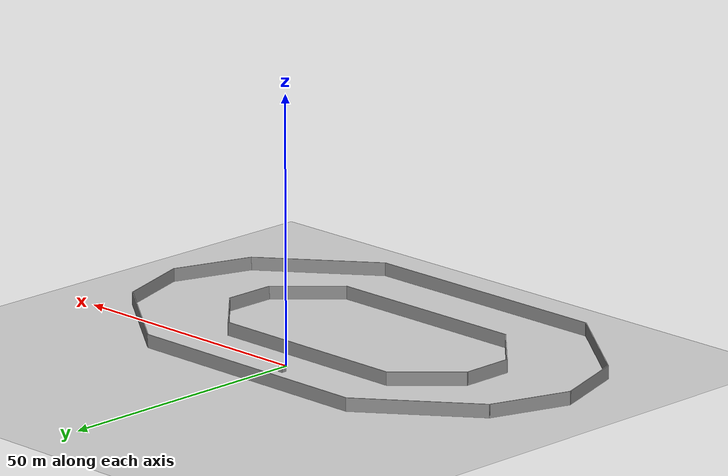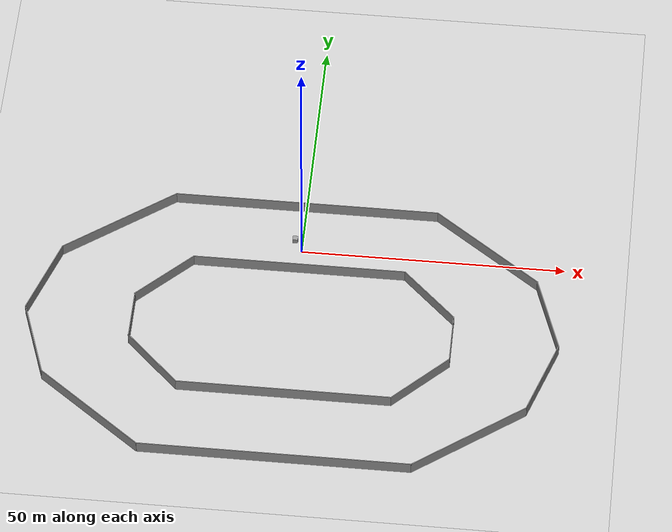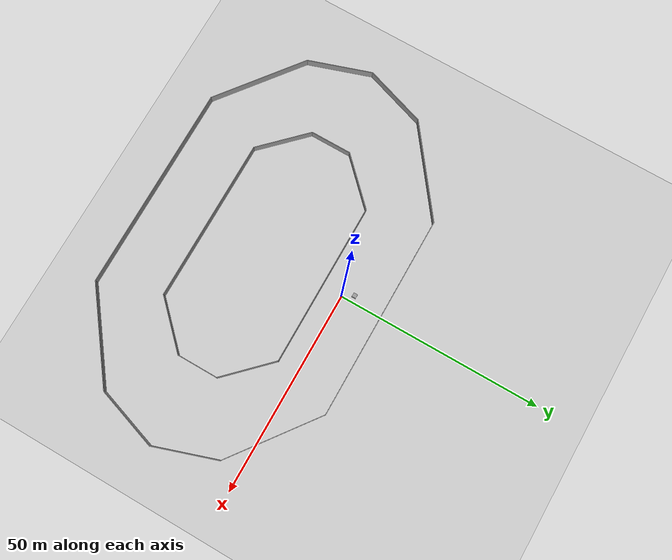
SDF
<?xml version="1.0" ?>
<sdf version="1.5">
  <world name="default">
    <!-- A global light source -->
    <include>
      <uri>model://sun</uri>
    </include>
    <!-- A ground plane -->
    <include>
      <uri>model://ground_plane</uri>
    </include>
    <!-- A unit box -->
    <model name='unit_box_0_0'>
      <pose frame=''>-1.5 2.5 0.5 0 -0 0</pose>
      <link name='link'>
        <inertial>
          <mass>1</mass>
          <inertia>
            <ixx>0.166667</ixx>
            <ixy>0</ixy>
            <ixz>0</ixz>
            <iyy>0.166667</iyy>
            <iyz>0</iyz>
            <izz>0.166667</izz>
          </inertia>
        </inertial>
        <collision name='collision'>
          <geometry>
            <box>
              <size>1 1 1</size>
            </box>
          </geometry>
          <max_contacts>10</max_contacts>
          <surface>
            <contact>
              <ode/>
            </contact>
            <bounce/>
            <friction>
              <torsional>
                <ode/>
              </torsional>
              <ode/>
            </friction>
          </surface>
        </collision>
        <visual name='visual'>
          <geometry>
            <box>
              <size>1 1 1</size>
            </box>
          </geometry>
          <material>
            <script>
              <name>Gazebo/Grey</name>
              <uri>file://media/materials/scripts/gazebo.material</uri>
            </script>
          </material>
        </visual>
        <self_collide>0</self_collide>
        <kinematic>0</kinematic>
        <gravity>1</gravity>
      </link>

    </model>
    <include>
      <uri>model://Circuit_TIM</uri>
    </include>
  </world>
</sdf>

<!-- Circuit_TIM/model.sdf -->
<sdf version='1.6'>
  <model name='Circuit_TIM'>
    <pose frame=''>0 -20.0001 0 0 -0 0</pose>
    <link name='Wall_16'>
      <collision name='Wall_16_Collision'>
        <geometry>
          <box>
            <size>50.5794 0.15 2.5</size>
          </box>
        </geometry>
        <pose frame=''>0 0 1.25 0 -0 0</pose>
      </collision>
      <visual name='Wall_16_Visual'>
        <pose frame=''>0 0 1.25 0 -0 0</pose>
        <geometry>
          <box>
            <size>50.5794 0.15 2.5</size>
          </box>
        </geometry>
        <material>
          <script>
            <uri>file://media/materials/scripts/gazebo.material</uri>
            <name>Gazebo/Grey</name>
          </script>
          <ambient>1 1 1 1</ambient>
        </material>
        <meta>
          <layer>0</layer>
        </meta>
      </visual>
      <pose frame=''>-0.214689 -29.9999 0 0 -0 0</pose>
    </link>
    <link name='Wall_18'>
      <collision name='Wall_18_Collision'>
        <geometry>
          <box>
            <size>25.15 0.15 2.5</size>
          </box>
        </geometry>
        <pose frame=''>0 0 1.25 0 -0 0</pose>
      </collision>
      <visual name='Wall_18_Visual'>
        <pose frame=''>0 0 1.25 0 -0 0</pose>
        <geometry>
          <box>
            <size>25.15 0.15 2.5</size>
          </box>
        </geometry>
        <material>
          <script>
            <uri>file://media/materials/scripts/gazebo.material</uri>
            <name>Gazebo/Grey</name>
          </script>
          <ambient>1 1 1 1</ambient>
        </material>
        <meta>
          <layer>0</layer>
        </meta>
      </visual>
      <pose frame=''>35 -22.4999 0 0 -0 0.643501</pose>
    </link>
    <link name='Wall_19'>
      <collision name='Wall_19_Collision'>
        <geometry>
          <box>
            <size>15.9614 0.15 2.5</size>
          </box>
        </geometry>
        <pose frame=''>0 0 1.25 0 -0 0</pose>
      </collision>
      <visual name='Wall_19_Visual'>
        <pose frame=''>0 0 1.25 0 -0 0</pose>
        <geometry>
          <box>
            <size>15.9614 0.15 2.5</size>
          </box>
        </geometry>
        <material>
          <script>
            <uri>file://media/materials/scripts/gazebo.material</uri>
            <name>Gazebo/Grey</name>
          </script>
          <ambient>1 1 1 1</ambient>
        </material>
        <meta>
          <layer>0</layer>
        </meta>
      </visual>
      <pose frame=''>47.5 -7.4999 0 0 -0 1.24905</pose>
    </link>
    <link name='Wall_20'>
      <collision name='Wall_20_Collision'>
        <geometry>
          <box>
            <size>15.9614 0.15 2.5</size>
          </box>
        </geometry>
        <pose frame=''>0 0 1.25 0 -0 0</pose>
      </collision>
      <visual name='Wall_20_Visual'>
        <pose frame=''>0 0 1.25 0 -0 0</pose>
        <geometry>
          <box>
            <size>15.9614 0.15 2.5</size>
          </box>
        </geometry>
        <material>
          <script>
            <uri>file://media/materials/scripts/gazebo.material</uri>
            <name>Gazebo/Grey</name>
          </script>
          <ambient>1 1 1 1</ambient>
        </material>
        <meta>
          <layer>0</layer>
        </meta>
      </visual>
      <pose frame=''>47.5 7.5001 0 0 -0 1.89255</pose>
    </link>
    <link name='Wall_23'>
      <collision name='Wall_23_Collision'>
        <geometry>
          <box>
            <size>25.15 0.15 2.5</size>
          </box>
        </geometry>
        <pose frame=''>0 0 1.25 0 -0 0</pose>
      </collision>
      <visual name='Wall_23_Visual'>
        <pose frame=''>0 0 1.25 0 -0 0</pose>
        <geometry>
          <box>
            <size>25.15 0.15 2.5</size>
          </box>
        </geometry>
        <material>
          <script>
            <uri>file://media/materials/scripts/gazebo.material</uri>
            <name>Gazebo/Grey</name>
          </script>
          <ambient>1 1 1 1</ambient>
        </material>
        <meta>
          <layer>0</layer>
        </meta>
      </visual>
      <pose frame=''>35 22.5001 0 0 -0 2.49809</pose>
    </link>
    <link name='Wall_24'>
      <collision name='Wall_24_Collision'>
        <geometry>
          <box>
            <size>50.15 0.15 2.5</size>
          </box>
        </geometry>
        <pose frame=''>0 0 1.25 0 -0 0</pose>
      </collision>
      <visual name='Wall_24_Visual'>
        <pose frame=''>0 0 1.25 0 -0 0</pose>
        <geometry>
          <box>
            <size>50.15 0.15 2.5</size>
          </box>
        </geometry>
        <material>
          <script>
            <uri>file://media/materials/scripts/gazebo.material</uri>
            <name>Gazebo/Grey</name>
          </script>
          <ambient>1 1 1 1</ambient>
        </material>
        <meta>
          <layer>0</layer>
        </meta>
      </visual>
      <pose frame=''>0 30.0001 0 0 -0 3.14159</pose>
    </link>
    <link name='Wall_25'>
      <collision name='Wall_25_Collision'>
        <geometry>
          <box>
            <size>25.15 0.15 2.5</size>
          </box>
        </geometry>
        <pose frame=''>0 0 1.25 0 -0 0</pose>
      </collision>
      <visual name='Wall_25_Visual'>
        <pose frame=''>0 0 1.25 0 -0 0</pose>
        <geometry>
          <box>
            <size>25.15 0.15 2.5</size>
          </box>
        </geometry>
        <material>
          <script>
            <uri>file://media/materials/scripts/gazebo.material</uri>
            <name>Gazebo/Grey</name>
          </script>
          <ambient>1 1 1 1</ambient>
        </material>
        <meta>
          <layer>0</layer>
        </meta>
      </visual>
      <pose frame=''>-35 22.5001 0 0 -0 -2.49809</pose>
    </link>
    <link name='Wall_26'>
      <collision name='Wall_26_Collision'>
        <geometry>
          <box>
            <size>15.9614 0.15 2.5</size>
          </box>
        </geometry>
        <pose frame=''>0 0 1.25 0 -0 0</pose>
      </collision>
      <visual name='Wall_26_Visual'>
        <pose frame=''>0 0 1.25 0 -0 0</pose>
        <geometry>
          <box>
            <size>15.9614 0.15 2.5</size>
          </box>
        </geometry>
        <material>
          <script>
            <uri>file://media/materials/scripts/gazebo.material</uri>
            <name>Gazebo/Grey</name>
          </script>
          <ambient>1 1 1 1</ambient>
        </material>
        <meta>
          <layer>0</layer>
        </meta>
      </visual>
      <pose frame=''>-47.5 7.5001 0 0 -0 -1.89255</pose>
    </link>
    <link name='Wall_27'>
      <collision name='Wall_27_Collision'>
        <geometry>
          <box>
            <size>15.9614 0.15 2.5</size>
          </box>
        </geometry>
        <pose frame=''>0 0 1.25 0 -0 0</pose>
      </collision>
      <visual name='Wall_27_Visual'>
        <pose frame=''>0 0 1.25 0 -0 0</pose>
        <geometry>
          <box>
            <size>15.9614 0.15 2.5</size>
          </box>
        </geometry>
        <material>
          <script>
            <uri>file://media/materials/scripts/gazebo.material</uri>
            <name>Gazebo/Grey</name>
          </script>
          <ambient>1 1 1 1</ambient>
        </material>
        <meta>
          <layer>0</layer>
        </meta>
      </visual>
      <pose frame=''>-47.5 -7.4999 0 0 -0 -1.24905</pose>
    </link>
    <link name='Wall_28'>
      <collision name='Wall_28_Collision'>
        <geometry>
          <box>
            <size>24.6944 0.15 2.5</size>
          </box>
        </geometry>
        <pose frame=''>0 0 1.25 0 -0 0</pose>
      </collision>
      <visual name='Wall_28_Visual'>
        <pose frame=''>0 0 1.25 0 -0 0</pose>
        <geometry>
          <box>
            <size>24.6944 0.15 2.5</size>
          </box>
        </geometry>
        <material>
          <script>
            <uri>file://media/materials/scripts/gazebo.material</uri>
            <name>Gazebo/Grey</name>
          </script>
          <ambient>1 1 1 1</ambient>
        </material>
        <meta>
          <layer>0</layer>
        </meta>
      </visual>
      <pose frame=''>-35.2863 -22.4999 0 0 -0 -0.657497</pose>
    </link>
    <link name='Wall_50'>
      <collision name='Wall_50_Collision'>
        <geometry>
          <box>
            <size>40.15 0.15 2.5</size>
          </box>
        </geometry>
        <pose frame=''>0 0 1.25 0 -0 0</pose>
      </collision>
      <visual name='Wall_50_Visual'>
        <pose frame=''>0 0 1.25 0 -0 0</pose>
        <geometry>
          <box>
            <size>40.15 0.15 2.5</size>
          </box>
        </geometry>
        <material>
          <script>
            <uri>file://media/materials/scripts/gazebo.material</uri>
            <name>Gazebo/Grey</name>
          </script>
          <ambient>1 1 1 1</ambient>
        </material>
        <meta>
          <layer>0</layer>
        </meta>
      </visual>
      <pose frame=''>0 15.0001 0 0 -0 0</pose>
    </link>
    <link name='Wall_51'>
      <collision name='Wall_51_Collision'>
        <geometry>
          <box>
            <size>14.2921 0.15 2.5</size>
          </box>
        </geometry>
        <pose frame=''>0 0 1.25 0 -0 0</pose>
      </collision>
      <visual name='Wall_51_Visual'>
        <pose frame=''>0 0 1.25 0 -0 0</pose>
        <geometry>
          <box>
            <size>14.2921 0.15 2.5</size>
          </box>
        </geometry>
        <material>
          <script>
            <uri>file://media/materials/scripts/gazebo.material</uri>
            <name>Gazebo/Grey</name>
          </script>
          <ambient>1 1 1 1</ambient>
        </material>
        <meta>
          <layer>0</layer>
        </meta>
      </visual>
      <pose frame=''>25 10.0001 0 0 -0 -0.785398</pose>
    </link>
    <link name='Wall_52'>
      <collision name='Wall_52_Collision'>
        <geometry>
          <box>
            <size>10.15 0.15 2.5</size>
          </box>
        </geometry>
        <pose frame=''>0 0 1.25 0 -0 0</pose>
      </collision>
      <visual name='Wall_52_Visual'>
        <pose frame=''>0 0 1.25 0 -0 0</pose>
        <geometry>
          <box>
            <size>10.15 0.15 2.5</size>
          </box>
        </geometry>
        <material>
          <script>
            <uri>file://media/materials/scripts/gazebo.material</uri>
            <name>Gazebo/Grey</name>
          </script>
          <ambient>1 1 1 1</ambient>
        </material>
        <meta>
          <layer>0</layer>
        </meta>
      </visual>
      <pose frame=''>30 9.9e-05 0 0 -0 -1.5708</pose>
    </link>
    <link name='Wall_53'>
      <collision name='Wall_53_Collision'>
        <geometry>
          <box>
            <size>14.2921 0.15 2.5</size>
          </box>
        </geometry>
        <pose frame=''>0 0 1.25 0 -0 0</pose>
      </collision>
      <visual name='Wall_53_Visual'>
        <pose frame=''>0 0 1.25 0 -0 0</pose>
        <geometry>
          <box>
            <size>14.2921 0.15 2.5</size>
          </box>
        </geometry>
        <material>
          <script>
            <uri>file://media/materials/scripts/gazebo.material</uri>
            <name>Gazebo/Grey</name>
          </script>
          <ambient>1 1 1 1</ambient>
        </material>
        <meta>
          <layer>0</layer>
        </meta>
      </visual>
      <pose frame=''>25 -9.9999 0 0 -0 -2.35619</pose>
    </link>
    <link name='Wall_54'>
      <collision name='Wall_54_Collision'>
        <geometry>
          <box>
            <size>40.15 0.15 2.5</size>
          </box>
        </geometry>
        <pose frame=''>0 0 1.25 0 -0 0</pose>
      </collision>
      <visual name='Wall_54_Visual'>
        <pose frame=''>0 0 1.25 0 -0 0</pose>
        <geometry>
          <box>
            <size>40.15 0.15 2.5</size>
          </box>
        </geometry>
        <material>
          <script>
            <uri>file://media/materials/scripts/gazebo.material</uri>
            <name>Gazebo/Grey</name>
          </script>
          <ambient>1 1 1 1</ambient>
        </material>
        <meta>
          <layer>0</layer>
        </meta>
      </visual>
      <pose frame=''>0 -14.9999 0 0 -0 3.14159</pose>
    </link>
    <link name='Wall_59'>
      <collision name='Wall_59_Collision'>
        <geometry>
          <box>
            <size>14.2921 0.15 2.5</size>
          </box>
        </geometry>
        <pose frame=''>0 0 1.25 0 -0 0</pose>
      </collision>
      <visual name='Wall_59_Visual'>
        <pose frame=''>0 0 1.25 0 -0 0</pose>
        <geometry>
          <box>
            <size>14.2921 0.15 2.5</size>
          </box>
        </geometry>
        <material>
          <script>
            <uri>file://media/materials/scripts/gazebo.material</uri>
            <name>Gazebo/Grey</name>
          </script>
          <ambient>1 1 1 1</ambient>
        </material>
        <meta>
          <layer>0</layer>
        </meta>
      </visual>
      <pose frame=''>-25 10.0001 0 0 -0 -2.35619</pose>
    </link>
    <link name='Wall_60'>
      <collision name='Wall_60_Collision'>
        <geometry>
          <box>
            <size>10.15 0.15 2.5</size>
          </box>
        </geometry>
        <pose frame=''>0 0 1.25 0 -0 0</pose>
      </collision>
      <visual name='Wall_60_Visual'>
        <pose frame=''>0 0 1.25 0 -0 0</pose>
        <geometry>
          <box>
            <size>10.15 0.15 2.5</size>
          </box>
        </geometry>
        <material>
          <script>
            <uri>file://media/materials/scripts/gazebo.material</uri>
            <name>Gazebo/Grey</name>
          </script>
          <ambient>1 1 1 1</ambient>
        </material>
        <meta>
          <layer>0</layer>
        </meta>
      </visual>
      <pose frame=''>-30 9.9e-05 0 0 -0 -1.5708</pose>
    </link>
    <link name='Wall_61'>
      <collision name='Wall_61_Collision'>
        <geometry>
          <box>
            <size>14.2921 0.15 2.5</size>
          </box>
        </geometry>
        <pose frame=''>0 0 1.25 0 -0 0</pose>
      </collision>
      <visual name='Wall_61_Visual'>
        <pose frame=''>0 0 1.25 0 -0 0</pose>
        <geometry>
          <box>
            <size>14.2921 0.15 2.5</size>
          </box>
        </geometry>
        <material>
          <script>
            <uri>file://media/materials/scripts/gazebo.material</uri>
            <name>Gazebo/Grey</name>
          </script>
          <ambient>1 1 1 1</ambient>
        </material>
        <meta>
          <layer>0</layer>
        </meta>
      </visual>
      <pose frame=''>-25 -9.9999 0 0 -0 -0.785398</pose>
    </link>
    <static>1</static>
  </model>
</sdf>
